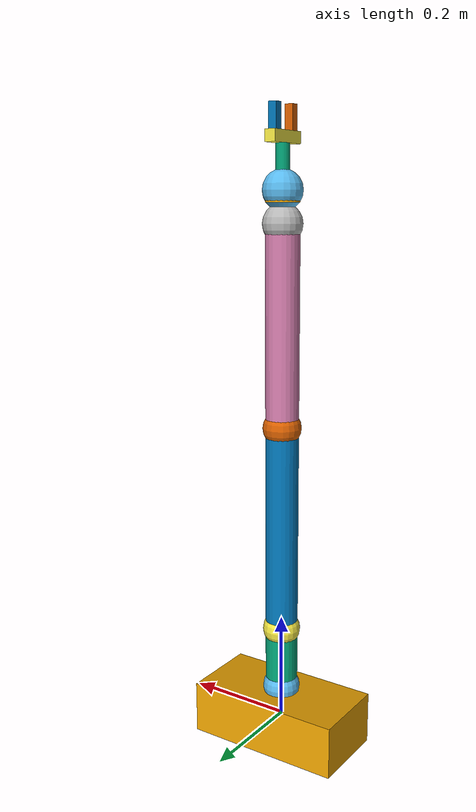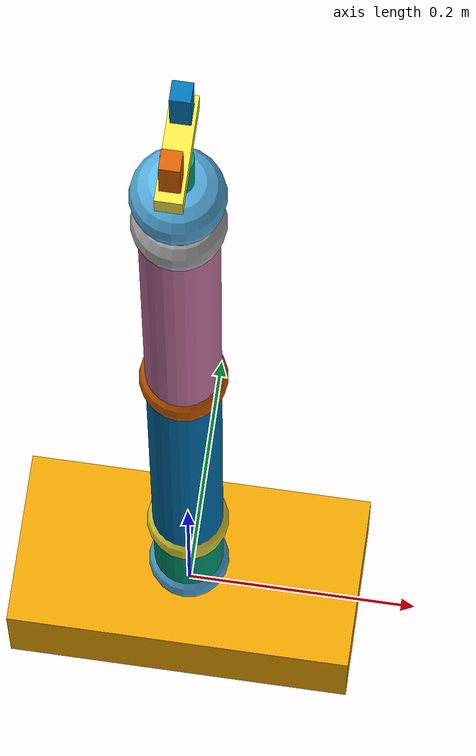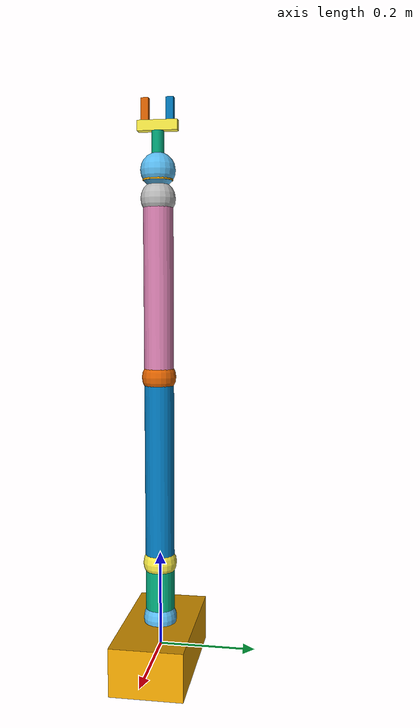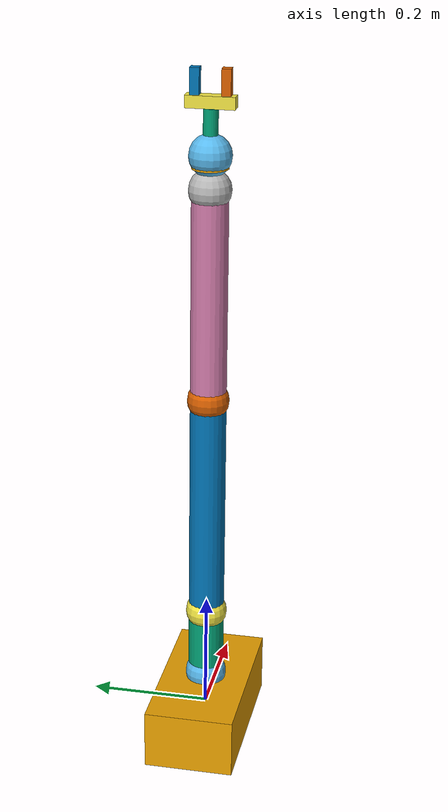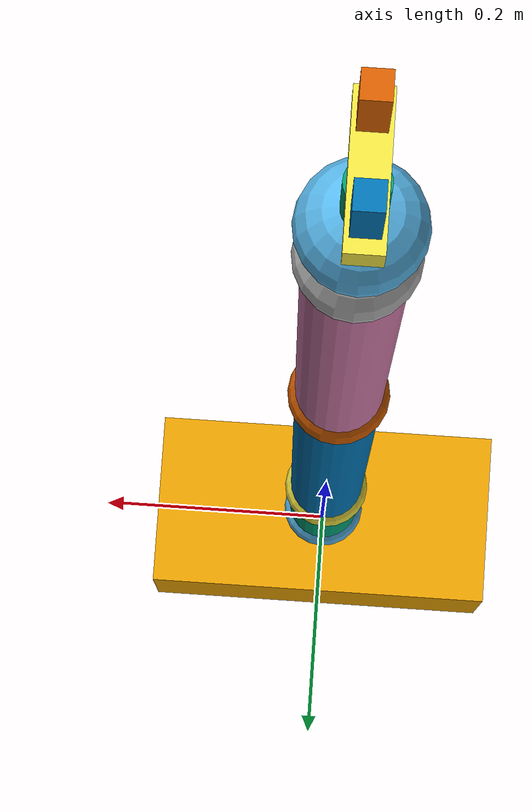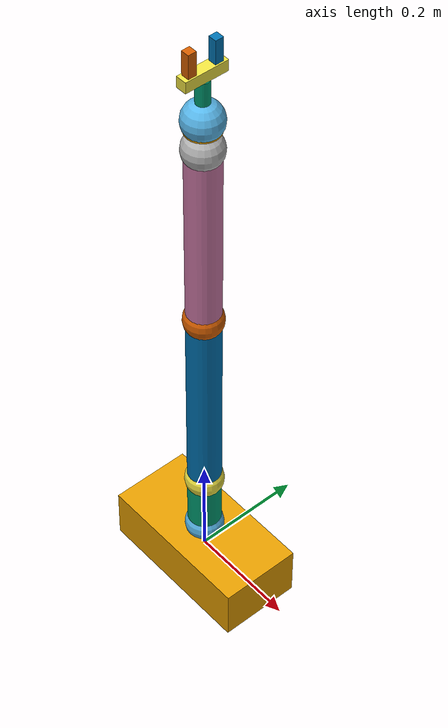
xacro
<?xml version="1.0"?>
<robot xmlns:xacro="http://www.ros.org/wiki/xacro" name="arm_robot">
    <xacro:arg name="initial_positions_file" default="initial_positions.yaml" />

    <!-- Import arm_robot urdf file -->
    <xacro:include filename="$(find moveit_arm_package)/urdf/arm.urdf.xacro" />

    <!-- Import control_xacro -->
    <xacro:include filename="arm_robot.ros2_control.xacro" />

    <xacro:arm_robot_ros2_control name="FakeSystem" initial_positions_file="$(arg initial_positions_file)"/>

</robot>

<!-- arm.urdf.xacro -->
<robot name="arm_robot" xmlns:xacro="http://www.ros.org/wiki/xacro">

    <link name="robot_base">
        <visual>
            <geometry>
                <box size="0.3 0.15 0.1"/>
            </geometry>
        </visual>
        <collision>
            <geometry>
                <box size="0.3 0.15 0.1"/>
            </geometry>
        </collision>
        <inertial>
            <mass value="0.5"/>
            <inertia ixx="0.001354" ixy="0" ixz="0"
                                    iyy="0.004167" iyz="0"
                                                   izz="0.004688"/>
        </inertial>
    </link>

    <link name="spin_link">
        <visual>
            <geometry>
                <sphere radius="0.035"/>
            </geometry>
        </visual>
        <collision>
            <geometry>
                <sphere radius="0.02"/>
            </geometry>
        </collision>
        <inertial>
            <mass value="0.05"/>
            <inertia ixx="0.0000245" ixy="0" ixz="0"
                                     iyy="0.0000245" iyz="0"
                                                     izz="0.0000245"/>
        </inertial>
    </link>

    <joint name="spin_main_joint" type="revolute">
        <parent link="robot_base"/>
        <child link="spin_link"/>
        <origin xyz="0 0 0.06" rpy="0 0 0"/>
        <axis xyz="0 0 1"/>
        <limit lower="-3.14159" upper="3.14159" effort="10" velocity="1"/>
        <dynamics damping="0.5" friction="0.1"/>
    </joint>

    <link name="spin_arm">
        <visual>
            <origin xyz="0 0 0.05" rpy="0 0 0"/>
            <geometry>
                <cylinder radius="0.03" length="0.1"/>
            </geometry>
        </visual>
        <collision>
            <origin xyz="0 0 0.04" rpy="0 0 0"/>
            <geometry>
                <cylinder radius="0.03" length="0.08"/>
            </geometry>
        </collision>
        <inertial>
            <origin xyz="0 0 0.05"/>
            <mass value="0.05"/>
            <inertia ixx="0.0000529" ixy="0" ixz="0"
                                     iyy="0.0000529" iyz="0"
                                                     izz="0.0000225"/>
        </inertial>
    </link>

    <!-- passive structural joint — always at 0, fixed for simulation -->
    <joint name="spin_arm_joint" type="fixed">
        <parent link="spin_link"/>
        <child link="spin_arm"/>
        <origin xyz="0 0 0.02" rpy="0 0 0"/>
    </joint>

    <link name="shoulder_link">
        <visual>
            <geometry>
                <sphere radius="0.035"/>
            </geometry>
        </visual>
        <collision>
            <geometry>
                <sphere radius="0.02"/>
            </geometry>
        </collision>
        <inertial>
            <mass value="0.05"/>
            <inertia ixx="0.0000245" ixy="0" ixz="0"
                                     iyy="0.0000245" iyz="0"
                                                     izz="0.0000245"/>
        </inertial>
    </link>

    <joint name="shoulder_main_joint" type="revolute">
        <parent link="spin_arm"/>
        <child link="shoulder_link"/>
        <origin xyz="0 0 0.1" rpy="0 0 0"/>
        <axis xyz="0 1 0"/>
        <limit lower="-1.57" upper="1.57" effort="10" velocity="1"/>
        <dynamics damping="0.5" friction="0.1"/>
    </joint>

    <link name="shoulder_arm">
        <visual>
            <origin xyz="0 0 0.15" rpy="0 0 0"/>
            <geometry>
                <cylinder radius="0.03" length="0.4"/>
            </geometry>
        </visual>
        <collision>
            <origin xyz="0 0 0.165" rpy="0 0 0"/>
            <geometry>
                <cylinder radius="0.03" length="0.33"/>
            </geometry>
        </collision>
        <inertial>
            <origin xyz="0 0 0.15"/>
            <mass value="0.15"/>
            <inertia ixx="0.002034" ixy="0" ixz="0"
                                    iyy="0.002034" iyz="0"
                                                   izz="0.0000675"/>
        </inertial>
    </link>

    <!-- passive structural joint — always at 0, fixed for simulation -->
    <joint name="shoulder_arm_joint" type="fixed">
        <parent link="shoulder_link"/>
        <child link="shoulder_arm"/>
        <origin xyz="0 0 0.04" rpy="0 0 0"/>
    </joint>

    <link name="elbow_link">
        <visual>
            <geometry>
                <sphere radius="0.035"/>
            </geometry>
        </visual>
        <collision>
            <geometry>
                <sphere radius="0.02"/>
            </geometry>
        </collision>
        <inertial>
            <mass value="0.05"/>
            <inertia ixx="0.0000245" ixy="0" ixz="0"
                                     iyy="0.0000245" iyz="0"
                                                     izz="0.0000245"/>
        </inertial>
    </link>

    <joint name="elbow_main_joint" type="revolute">
        <parent link="shoulder_arm"/>
        <child link="elbow_link"/>
        <origin xyz="0 0 0.35" rpy="0 0 0"/>
        <axis xyz="0 1 0"/>
        <limit lower="-2.356" upper="2.356" effort="10" velocity="1"/>
        <dynamics damping="0.5" friction="0.1"/>
    </joint>

    <link name="elbow_arm">
        <visual>
            <origin xyz="0 0 0.15" rpy="0 0 0"/>
            <geometry>
                <cylinder radius="0.03" length="0.35"/>
            </geometry>
        </visual>
        <collision>
            <origin xyz="0 0 0.15" rpy="0 0 0"/>
            <geometry>
                <cylinder radius="0.03" length="0.30"/>
            </geometry>
        </collision>
        <inertial>
            <origin xyz="0 0 0.15"/>
            <mass value="0.12"/>
            <inertia ixx="0.001252" ixy="0" ixz="0"
                                    iyy="0.001252" iyz="0"
                                                   izz="0.000054"/>
        </inertial>
    </link>

    <!-- passive structural joint — always at 0, fixed for simulation -->
    <joint name="elbow_arm_joint" type="fixed">
        <parent link="elbow_link"/>
        <child link="elbow_arm"/>
        <origin xyz="0 0 0.035" rpy="0 0 0"/>
    </joint>

     <link name="forearm_link">
        <visual>
            <geometry>
                <sphere radius="0.035"/>
            </geometry>
        </visual>
        <collision>
            <geometry>
                <sphere radius="0.02"/>
            </geometry>
        </collision>
        <inertial>
            <mass value="0.05"/>
            <inertia ixx="0.0000245" ixy="0" ixz="0"
                                     iyy="0.0000245" iyz="0"
                                                     izz="0.0000245"/>
        </inertial>
    </link>

    <joint name="forearm_main_joint" type="revolute">
        <parent link="elbow_arm"/>
        <child link="forearm_link"/>
        <origin xyz="0 0 0.32" rpy="0 0 0"/>
        <axis xyz="0 0 1"/>
        <limit lower="-3.14159" upper="3.14159" effort="10" velocity="1"/>
        <dynamics damping="0.5" friction="0.1"/>
    </joint>

    <link name="forearm_arm">
        <visual>
            <origin xyz="0 0 0.01" rpy="0 0 0"/>
            <geometry>
                <cylinder radius="0.03" length="0.02"/>
            </geometry>
        </visual>
        <collision>
            <origin xyz="0 0 0.01" rpy="0 0 0"/>
            <geometry>
                <cylinder radius="0.03" length="0.02"/>
            </geometry>
        </collision>
        <inertial>
            <origin xyz="0 0 0.01"/>
            <mass value="0.02"/>
            <inertia ixx="0.0000245" ixy="0" ixz="0"
                                     iyy="0.0000245" iyz="0"
                                                     izz="0.0000245"/>
        </inertial>
    </link>

    <joint name="forearm_arm_joint" type="fixed">
        <parent link="forearm_link"/>
        <child link="forearm_arm"/>
        <origin xyz="0 0 0.035" rpy="0 0 0"/>
    </joint>

    <link name="wrist_link">
        <visual>
            <geometry>
                <sphere radius="0.035"/>
            </geometry>
        </visual>
        <collision>
            <geometry>
                <sphere radius="0.02"/>
            </geometry>
        </collision>
        <inertial>
            <mass value="0.03"/>
            <inertia ixx="0.0000147" ixy="0" ixz="0"
                                     iyy="0.0000147" iyz="0"
                                                     izz="0.0000147"/>
        </inertial>
    </link>

    <joint name="wrist_main_joint" type="revolute">
        <parent link="forearm_arm"/>
        <child link="wrist_link"/>
        <origin xyz="0 0 0.02" rpy="0 0 0"/>
        <axis xyz="0 1 0"/>
        <limit lower="-2.094" upper="2.094" effort="10" velocity="1"/>
        <dynamics damping="0.5" friction="0.1"/>
    </joint>

    <link name="wrist_arm">
        <visual>
            <origin xyz="0 0 0.025" rpy="0 0 0"/>
            <geometry>
                <cylinder radius="0.012" length="0.05"/>
            </geometry>
        </visual>
        <collision>
            <origin xyz="0 0 0.025" rpy="0 0 0"/>
            <geometry>
                <cylinder radius="0.012" length="0.05"/>
            </geometry>
        </collision>
        <inertial>
            <origin xyz="0 0 0.025"/>
            <mass value="0.02"/>
            <inertia ixx="0.000004887" ixy="0" ixz="0"
                                       iyy="0.000004887" iyz="0"
                                                         izz="0.00000144"/>
        </inertial>
    </link>

    <!-- passive structural joint — always at 0, fixed for simulation -->
    <joint name="wrist_arm_joint" type="revolute">
        <parent link="wrist_link"/>
        <child link="wrist_arm"/>
        <origin xyz="0 0 0.025" rpy="0 0 0"/>
        <axis xyz="0 0 1"/>
        <limit lower="-3.14159" upper="3.14159" effort="10" velocity="1"/>
        <dynamics damping="0.5" friction="0.1"/>
    </joint>

    <link name="gripper_base">
        <visual>
            <origin xyz="0 0 0.05" rpy="0 0 0"/>
            <geometry>
                <box size="0.02 0.08 0.02"/>
            </geometry>
        </visual>
        <collision>
            <origin xyz="0 0 0.05" rpy="0 0 0"/>
            <geometry>
                <box size="0.02 0.02 0.02"/>
            </geometry>
        </collision>
        <inertial>
            <origin xyz="0 0 0.05"/>
            <mass value="0.03"/>
            <inertia ixx="0.000017" ixy="0" ixz="0"
                                    iyy="0.000002" iyz="0"
                                                   izz="0.000017"/>
        </inertial>
    </link>

    <joint name="gripper_base_joint" type="fixed">
        <parent link="wrist_arm"/>
        <child link="gripper_base"/>
        <origin xyz="0 0 0.01" rpy="0 0 0"/>
    </joint>

    <link name="gripper_left_finger">
        <visual>
            <origin xyz="0 0.025 0.035" rpy="0 0 0"/>
            <geometry>
                <box size="0.015 0.015 0.045"/>
            </geometry>
        </visual>
        <collision>
            <origin xyz="0 0.025 0.02" rpy="0 0 0"/>
            <geometry>
                <box size="0.015 0.015 0.045"/>
            </geometry>
        </collision>
        <inertial>
            <origin xyz="0 0.025 0.035"/>
            <mass value="0.01"/>
            <inertia ixx="0.000001875" ixy="0" ixz="0"
                                       iyy="0.000001875" iyz="0"
                                                         izz="0.000000375"/>
        </inertial>
    </link>

    <joint name="gripper_left_finger_joint" type="prismatic">
        <parent link="gripper_base"/>
        <child link="gripper_left_finger"/>
        <origin xyz="0 0 0.045" rpy="0 0 0"/>
        <axis xyz="0 1 0"/>
        <limit lower="-0.04" upper="0.04" effort="5" velocity="0.1"/>
        <dynamics damping="0.1" friction="0.05"/>
    </joint>

    <link name="gripper_right_finger">
        <visual>
            <origin xyz="0 -0.025 0.035" rpy="0 0 0"/>
            <geometry>
                <box size="0.015 0.015 0.045"/>
            </geometry>
        </visual>
        <collision>
            <origin xyz="0 -0.025 0.035" rpy="0 0 0"/>
            <geometry>
                <box size="0.015 0.015 0.045"/>
            </geometry>
        </collision>
        <inertial>
            <origin xyz="0 -0.025 0.035"/>
            <mass value="0.01"/>
            <inertia ixx="0.000001875" ixy="0" ixz="0"
                                       iyy="0.000001875" iyz="0"
                                                         izz="0.000000375"/>
        </inertial>
    </link>

    <joint name="gripper_right_finger_joint" type="prismatic">
        <parent link="gripper_base"/>
        <child link="gripper_right_finger"/>
        <origin xyz="0 0 0.045" rpy="0 0 0"/>
        <axis xyz="0 -1 0"/>
        <limit lower="-0.04" upper="0.04" effort="5" velocity="0.1"/>
        <dynamics damping="0.1" friction="0.05"/>
    </joint>

    <!-- ros2_control hardware interface (used by Gazebo simulation)  -->
    <ros2_control name="GazeboSystem" type="system">
        <hardware>
            <plugin>mock_components/GenericSystem</plugin>
        </hardware>
        <joint name="shoulder_main_joint">
            <command_interface name="position">
                <param name="min">-1.57</param>
                <param name="max">1.57</param>
            </command_interface>
            <state_interface name="position"/>
            <state_interface name="velocity"/>
        </joint>
        <joint name="elbow_main_joint">
            <command_interface name="position">
                <param name="min">-2.356</param>
                <param name="max">2.356</param>
            </command_interface>
            <state_interface name="position"/>
            <state_interface name="velocity"/>
        </joint>
        <joint name="wrist_main_joint">
            <command_interface name="position">
                <param name="min">-2.094</param>
                <param name="max">2.094</param>
            </command_interface>
            <state_interface name="position"/>
            <state_interface name="velocity"/>
        </joint>
        <joint name="spin_main_joint">
            <command_interface name="position">
                <param name="min">-3.14159</param>
                <param name="max">3.14159</param>
            </command_interface>
            <state_interface name="position"/>
            <state_interface name="velocity"/>
        </joint>
        <joint name="forearm_main_joint">
            <command_interface name="position">
                <param name="min">-3.14159</param>
                <param name="max">3.14159</param>
            </command_interface>
            <state_interface name="position"/>
            <state_interface name="velocity"/>
        </joint>
        <joint name="wrist_arm_joint">
            <command_interface name="position">
                <param name="min">-3.14159</param>
                <param name="max">3.14159</param>
            </command_interface>
            <state_interface name="position"/>
            <state_interface name="velocity"/>
        </joint>
        <joint name="gripper_left_finger_joint">
            <command_interface name="position">
                <param name="min">-0.04</param>
                <param name="max">0.04</param>
            </command_interface>
            <state_interface name="position"/>
            <state_interface name="velocity"/>
        </joint>
        <joint name="gripper_right_finger_joint">
            <command_interface name="position">
                <param name="min">-0.04</param>
                <param name="max">0.04</param>
            </command_interface>
            <state_interface name="position"/>
            <state_interface name="velocity"/>
        </joint>
    </ros2_control>

    <!-- Gazebo plugin — loads controllers from controllers.yaml -->
    <gazebo>
        <plugin name="gazebo_ros2_control" filename="libgazebo_ros2_control.so">
            <parameters>$(find moveit_arm_package)/config/controllers.yaml</parameters>
        </plugin>
    </gazebo>

    <gazebo reference="gripper_left_finger">
        <mu1>10.0</mu1>
        <mu2>10.0</mu2>
        <kp>1e6</kp>
        <kd>100.0</kd>
        <sensor name="left_finger_contact" type="contact">
            <always_on>true</always_on>
            <update_rate>100</update_rate>
            <contact>
                <collision>gripper_left_finger_collision</collision>
            </contact>
            <plugin name="left_finger_bumper" filename="libgazebo_ros_bumper.so">
                <ros>
                    <remapping>bumper_states:=gripper_left_contact</remapping>
                </ros>
                <frame_name>world</frame_name>
            </plugin>
        </sensor>
    </gazebo>

    <gazebo reference="gripper_right_finger">
        <mu1>1.5</mu1>
        <mu2>1.5</mu2>
        <kp>1e4</kp>
        <kd>10.0</kd>
        <sensor name="right_finger_contact" type="contact">
            <always_on>true</always_on>
            <update_rate>100</update_rate>
            <contact>
                <collision>gripper_right_finger_collision</collision>
            </contact>
            <plugin name="right_finger_bumper" filename="libgazebo_ros_bumper.so">
                <ros>
                    <remapping>bumper_states:=gripper_right_contact</remapping>
                </ros>
                <frame_name>world</frame_name>
            </plugin>
        </sensor>
    </gazebo>

</robot>
